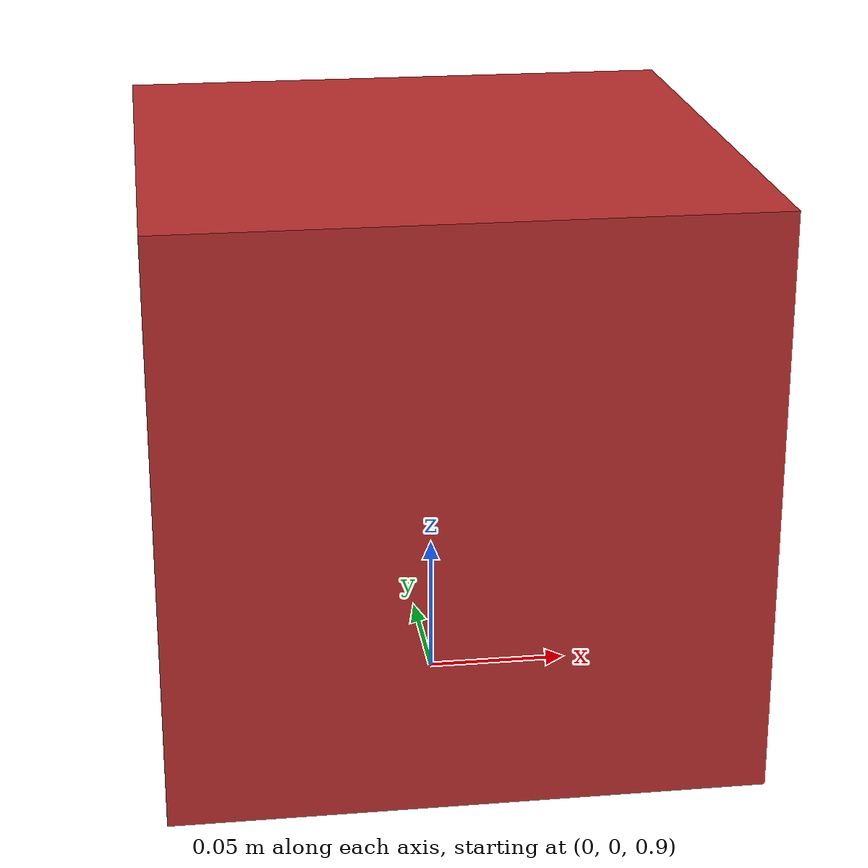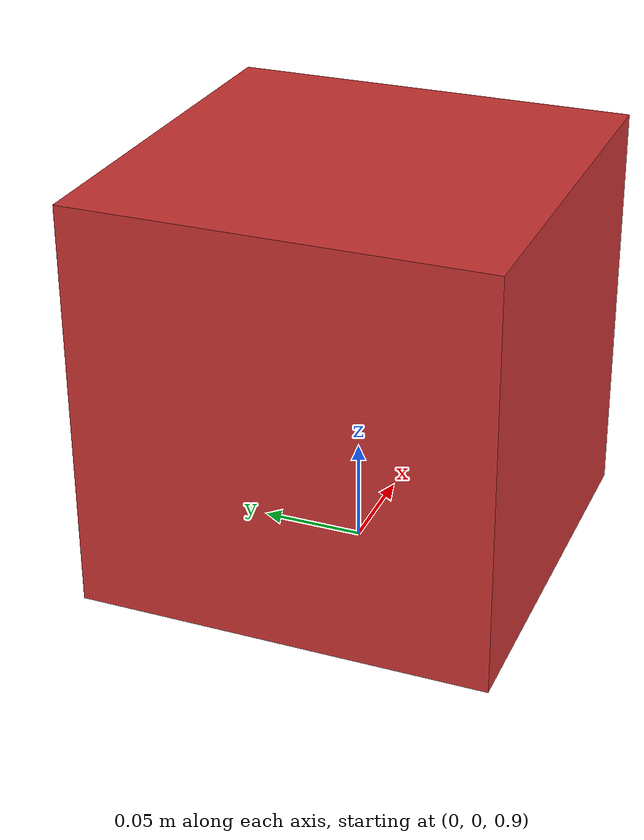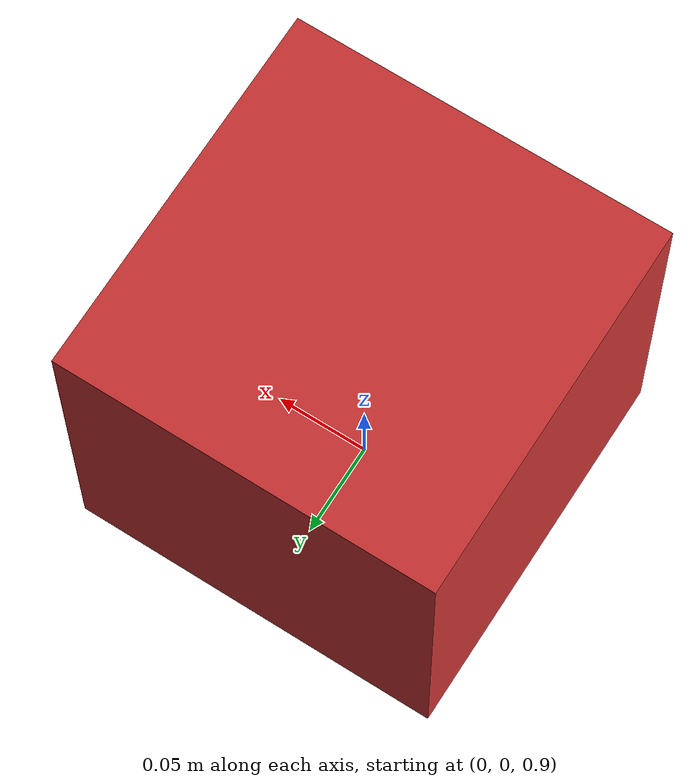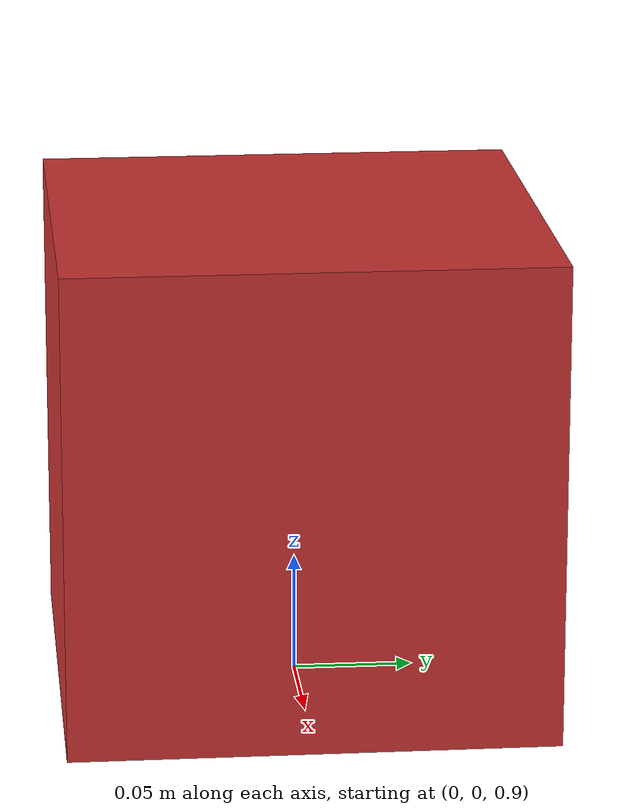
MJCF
<mujoco>
  <visual>
    <rgba haze="0.15 0.25 0.35 1"/>
    <quality shadowsize="8192"/>
    <global azimuth="220" elevation="-40"/>
  </visual>

  <asset>
    <texture type="skybox" builtin="gradient" rgb1="0.3 0.5 0.7" rgb2="0 0 0" width="512" height="3072"/>
    <texture type="2d" name="groundplane" builtin="checker" mark="edge" rgb1="0.2 0.3 0.4" rgb2="0.1 0.2 0.3"
      markrgb="0.8 0.8 0.8" width="300" height="300"/>
    <material name="groundplane" texture="groundplane" texuniform="true" texrepeat="5 5" reflectance="0.2"/>
  </asset>

  <worldbody>
    <light pos="0 0 1"/>
    <light pos="0.3 0 1.5" dir="0 0 -1" directional="true"/>
    <geom name="floor" pos="0 0 -0.1" size="0 0 0.05" type="plane" material="groundplane"/>

    <body name="controlled_object" pos="0 0 1">
      <joint name="tx" type="slide" axis="1 0 0" damping="100.0"/>
      <joint name="ty" type="slide" axis="0 1 0" damping="100.0"/>
      <joint name="tz" type="slide" axis="0 0 1" damping="100.0"/>

      <joint name="rz" type="hinge" axis="0 0 1" damping="100.0"/>
      <joint name="ry" type="hinge" axis="0 1 0" damping="100.0"/>
      <joint name="rx" type="hinge" axis="1 0 0" damping="100.0"/>

      <geom type="box" size="0.1 0.1 0.1" rgba="0.8 0.2 0.2 1"/>
    </body>
  </worldbody>

  <actuator>
    <position name="act_tx" joint="tx" kp="1000"/>
    <position name="act_ty" joint="ty" kp="1000"/>
    <position name="act_tz" joint="tz" kp="1000"/>

    <position name="act_rz" joint="rz" kp="1000"/>
    <position name="act_ry" joint="ry" kp="1000"/>
    <position name="act_rx" joint="rx" kp="1000"/>
  </actuator>
</mujoco>
